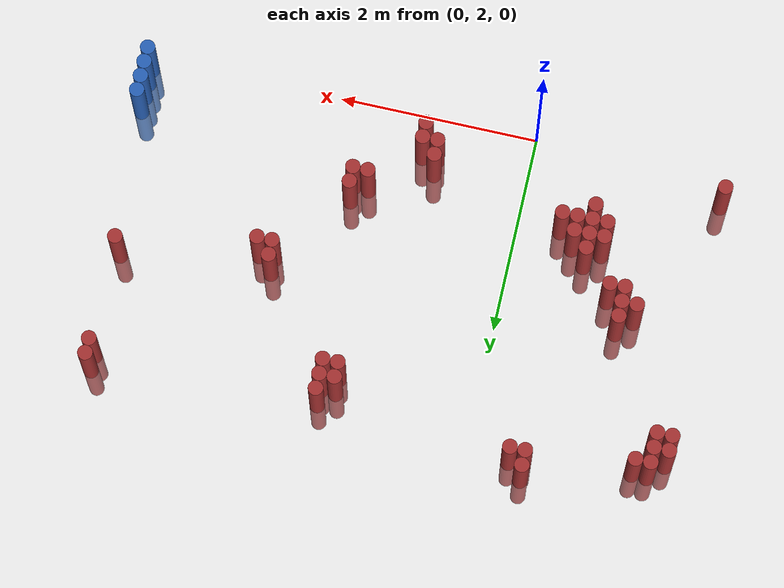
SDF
<sdf version="1.6">
 <world name="default">
  <model name="ground_plane">
   <static>1</static>
   <link name="link">
    <collision name="collision">
     <geometry><plane><normal>0 0 1</normal><size>100 100</size></plane></geometry>
     <surface><friction><ode><mu>100</mu><mu2>50</mu2></ode></friction></surface>
    </collision>
    <visual name="visual">
     <cast_shadows>0</cast_shadows>
     <geometry><plane><normal>0 0 1</normal><size>100 100</size></plane></geometry>
     <material>
      <script><uri>file://media/materials/scripts/gazebo.material</uri><name>Gazebo/Grey</name></script>
     </material>
    </visual>
   </link>
  </model>
  <model name="unit_cylinder_144">
   <static>1</static>
   <pose>3.925000 2.275000 0.000000 0.000000 0.000000 0.000000</pose>
   <link name="link">
    <inertial>
     <mass>1</mass>
     <inertia><ixx>0.145833</ixx><ixy>0</ixy><ixz>0</ixz><iyy>0.145833</iyy><iyz>0</iyz><izz>0.125</izz></inertia>
    </inertial>
    <collision name="collision">
     <geometry><cylinder><radius>0.075000</radius><length>1.5</length></cylinder></geometry>
    </collision>
    <visual name="visual">
     <geometry><cylinder><radius>0.075000</radius><length>1.5</length></cylinder></geometry>
     <material>
      <ambient>0.152000 0.379000 0.720000 1</ambient>
      <diffuse>0.152000 0.379000 0.720000 1</diffuse>
     </material>
     <material>
      <script><name>Gazebo/Grey</name><uri>file://media/materials/scripts/gazebo.material</uri></script>
     </material>
    </visual>
   </link>
  </model>
  <model name="unit_cylinder_146">
   <static>1</static>
   <pose>3.925000 2.425000 0.000000 0.000000 0.000000 0.000000</pose>
   <link name="link">
    <inertial>
     <mass>1</mass>
     <inertia><ixx>0.145833</ixx><ixy>0</ixy><ixz>0</ixz><iyy>0.145833</iyy><iyz>0</iyz><izz>0.125</izz></inertia>
    </inertial>
    <collision name="collision">
     <geometry><cylinder><radius>0.075000</radius><length>1.5</length></cylinder></geometry>
    </collision>
    <visual name="visual">
     <geometry><cylinder><radius>0.075000</radius><length>1.5</length></cylinder></geometry>
     <material>
      <ambient>0.152000 0.379000 0.720000 1</ambient>
      <diffuse>0.152000 0.379000 0.720000 1</diffuse>
     </material>
     <material>
      <script><name>Gazebo/Grey</name><uri>file://media/materials/scripts/gazebo.material</uri></script>
     </material>
    </visual>
   </link>
  </model>
  <model name="unit_cylinder_148">
   <static>1</static>
   <pose>3.925000 2.575000 0.000000 0.000000 0.000000 0.000000</pose>
   <link name="link">
    <inertial>
     <mass>1</mass>
     <inertia><ixx>0.145833</ixx><ixy>0</ixy><ixz>0</ixz><iyy>0.145833</iyy><iyz>0</iyz><izz>0.125</izz></inertia>
    </inertial>
    <collision name="collision">
     <geometry><cylinder><radius>0.075000</radius><length>1.5</length></cylinder></geometry>
    </collision>
    <visual name="visual">
     <geometry><cylinder><radius>0.075000</radius><length>1.5</length></cylinder></geometry>
     <material>
      <ambient>0.152000 0.379000 0.720000 1</ambient>
      <diffuse>0.152000 0.379000 0.720000 1</diffuse>
     </material>
     <material>
      <script><name>Gazebo/Grey</name><uri>file://media/materials/scripts/gazebo.material</uri></script>
     </material>
    </visual>
   </link>
  </model>
  <model name="unit_cylinder_298">
   <static>1</static>
   <pose>-1.925000 2.275000 0.000000 0.000000 0.000000 0.000000</pose>
   <link name="link">
    <inertial>
     <mass>1</mass>
     <inertia><ixx>0.145833</ixx><ixy>0</ixy><ixz>0</ixz><iyy>0.145833</iyy><iyz>0</iyz><izz>0.125</izz></inertia>
    </inertial>
    <collision name="collision">
     <geometry><cylinder><radius>0.075000</radius><length>1.5</length></cylinder></geometry>
    </collision>
    <visual name="visual">
     <geometry><cylinder><radius>0.075000</radius><length>1.5</length></cylinder></geometry>
     <material>
      <ambient>0.648000 0.192000 0.192000 1</ambient>
      <diffuse>0.648000 0.192000 0.192000 1</diffuse>
     </material>
     <material>
      <script><name>Gazebo/Grey</name><uri>file://media/materials/scripts/gazebo.material</uri></script>
     </material>
    </visual>
   </link>
  </model>
  <model name="unit_cylinder_299">
   <static>1</static>
   <pose>-1.925000 4.825000 0.000000 0.000000 0.000000 0.000000</pose>
   <link name="link">
    <inertial>
     <mass>1</mass>
     <inertia><ixx>0.145833</ixx><ixy>0</ixy><ixz>0</ixz><iyy>0.145833</iyy><iyz>0</iyz><izz>0.125</izz></inertia>
    </inertial>
    <collision name="collision">
     <geometry><cylinder><radius>0.075000</radius><length>1.5</length></cylinder></geometry>
    </collision>
    <visual name="visual">
     <geometry><cylinder><radius>0.075000</radius><length>1.5</length></cylinder></geometry>
     <material>
      <ambient>0.648000 0.192000 0.192000 1</ambient>
      <diffuse>0.648000 0.192000 0.192000 1</diffuse>
     </material>
     <material>
      <script><name>Gazebo/Grey</name><uri>file://media/materials/scripts/gazebo.material</uri></script>
     </material>
    </visual>
   </link>
  </model>
  <model name="unit_cylinder_300">
   <static>1</static>
   <pose>-1.925000 4.975000 0.000000 0.000000 0.000000 0.000000</pose>
   <link name="link">
    <inertial>
     <mass>1</mass>
     <inertia><ixx>0.145833</ixx><ixy>0</ixy><ixz>0</ixz><iyy>0.145833</iyy><iyz>0</iyz><izz>0.125</izz></inertia>
    </inertial>
    <collision name="collision">
     <geometry><cylinder><radius>0.075000</radius><length>1.5</length></cylinder></geometry>
    </collision>
    <visual name="visual">
     <geometry><cylinder><radius>0.075000</radius><length>1.5</length></cylinder></geometry>
     <material>
      <ambient>0.648000 0.192000 0.192000 1</ambient>
      <diffuse>0.648000 0.192000 0.192000 1</diffuse>
     </material>
     <material>
      <script><name>Gazebo/Grey</name><uri>file://media/materials/scripts/gazebo.material</uri></script>
     </material>
    </visual>
   </link>
  </model>
  <model name="unit_cylinder_303">
   <static>1</static>
   <pose>-1.775000 4.825000 0.000000 0.000000 0.000000 0.000000</pose>
   <link name="link">
    <inertial>
     <mass>1</mass>
     <inertia><ixx>0.145833</ixx><ixy>0</ixy><ixz>0</ixz><iyy>0.145833</iyy><iyz>0</iyz><izz>0.125</izz></inertia>
    </inertial>
    <collision name="collision">
     <geometry><cylinder><radius>0.075000</radius><length>1.5</length></cylinder></geometry>
    </collision>
    <visual name="visual">
     <geometry><cylinder><radius>0.075000</radius><length>1.5</length></cylinder></geometry>
     <material>
      <ambient>0.648000 0.192000 0.192000 1</ambient>
      <diffuse>0.648000 0.192000 0.192000 1</diffuse>
     </material>
     <material>
      <script><name>Gazebo/Grey</name><uri>file://media/materials/scripts/gazebo.material</uri></script>
     </material>
    </visual>
   </link>
  </model>
  <model name="unit_cylinder_304">
   <static>1</static>
   <pose>-1.775000 4.975000 0.000000 0.000000 0.000000 0.000000</pose>
   <link name="link">
    <inertial>
     <mass>1</mass>
     <inertia><ixx>0.145833</ixx><ixy>0</ixy><ixz>0</ixz><iyy>0.145833</iyy><iyz>0</iyz><izz>0.125</izz></inertia>
    </inertial>
    <collision name="collision">
     <geometry><cylinder><radius>0.075000</radius><length>1.5</length></cylinder></geometry>
    </collision>
    <visual name="visual">
     <geometry><cylinder><radius>0.075000</radius><length>1.5</length></cylinder></geometry>
     <material>
      <ambient>0.648000 0.192000 0.192000 1</ambient>
      <diffuse>0.648000 0.192000 0.192000 1</diffuse>
     </material>
     <material>
      <script><name>Gazebo/Grey</name><uri>file://media/materials/scripts/gazebo.material</uri></script>
     </material>
    </visual>
   </link>
  </model>
  <model name="unit_cylinder_305">
   <static>1</static>
   <pose>-1.775000 5.125000 0.000000 0.000000 0.000000 0.000000</pose>
   <link name="link">
    <inertial>
     <mass>1</mass>
     <inertia><ixx>0.145833</ixx><ixy>0</ixy><ixz>0</ixz><iyy>0.145833</iyy><iyz>0</iyz><izz>0.125</izz></inertia>
    </inertial>
    <collision name="collision">
     <geometry><cylinder><radius>0.075000</radius><length>1.5</length></cylinder></geometry>
    </collision>
    <visual name="visual">
     <geometry><cylinder><radius>0.075000</radius><length>1.5</length></cylinder></geometry>
     <material>
      <ambient>0.648000 0.192000 0.192000 1</ambient>
      <diffuse>0.648000 0.192000 0.192000 1</diffuse>
     </material>
     <material>
      <script><name>Gazebo/Grey</name><uri>file://media/materials/scripts/gazebo.material</uri></script>
     </material>
    </visual>
   </link>
  </model>
  <model name="unit_cylinder_307">
   <static>1</static>
   <pose>-1.625000 5.125000 0.000000 0.000000 0.000000 0.000000</pose>
   <link name="link">
    <inertial>
     <mass>1</mass>
     <inertia><ixx>0.145833</ixx><ixy>0</ixy><ixz>0</ixz><iyy>0.145833</iyy><iyz>0</iyz><izz>0.125</izz></inertia>
    </inertial>
    <collision name="collision">
     <geometry><cylinder><radius>0.075000</radius><length>1.5</length></cylinder></geometry>
    </collision>
    <visual name="visual">
     <geometry><cylinder><radius>0.075000</radius><length>1.5</length></cylinder></geometry>
     <material>
      <ambient>0.648000 0.192000 0.192000 1</ambient>
      <diffuse>0.648000 0.192000 0.192000 1</diffuse>
     </material>
     <material>
      <script><name>Gazebo/Grey</name><uri>file://media/materials/scripts/gazebo.material</uri></script>
     </material>
    </visual>
   </link>
  </model>
  <model name="unit_cylinder_310">
   <static>1</static>
   <pose>-1.325000 3.625000 0.000000 0.000000 0.000000 0.000000</pose>
   <link name="link">
    <inertial>
     <mass>1</mass>
     <inertia><ixx>0.145833</ixx><ixy>0</ixy><ixz>0</ixz><iyy>0.145833</iyy><iyz>0</iyz><izz>0.125</izz></inertia>
    </inertial>
    <collision name="collision">
     <geometry><cylinder><radius>0.075000</radius><length>1.5</length></cylinder></geometry>
    </collision>
    <visual name="visual">
     <geometry><cylinder><radius>0.075000</radius><length>1.5</length></cylinder></geometry>
     <material>
      <ambient>0.648000 0.192000 0.192000 1</ambient>
      <diffuse>0.648000 0.192000 0.192000 1</diffuse>
     </material>
     <material>
      <script><name>Gazebo/Grey</name><uri>file://media/materials/scripts/gazebo.material</uri></script>
     </material>
    </visual>
   </link>
  </model>
  <model name="unit_cylinder_313">
   <static>1</static>
   <pose>-1.175000 3.475000 0.000000 0.000000 0.000000 0.000000</pose>
   <link name="link">
    <inertial>
     <mass>1</mass>
     <inertia><ixx>0.145833</ixx><ixy>0</ixy><ixz>0</ixz><iyy>0.145833</iyy><iyz>0</iyz><izz>0.125</izz></inertia>
    </inertial>
    <collision name="collision">
     <geometry><cylinder><radius>0.075000</radius><length>1.5</length></cylinder></geometry>
    </collision>
    <visual name="visual">
     <geometry><cylinder><radius>0.075000</radius><length>1.5</length></cylinder></geometry>
     <material>
      <ambient>0.648000 0.192000 0.192000 1</ambient>
      <diffuse>0.648000 0.192000 0.192000 1</diffuse>
     </material>
     <material>
      <script><name>Gazebo/Grey</name><uri>file://media/materials/scripts/gazebo.material</uri></script>
     </material>
    </visual>
   </link>
  </model>
  <model name="unit_cylinder_314">
   <static>1</static>
   <pose>-1.175000 3.625000 0.000000 0.000000 0.000000 0.000000</pose>
   <link name="link">
    <inertial>
     <mass>1</mass>
     <inertia><ixx>0.145833</ixx><ixy>0</ixy><ixz>0</ixz><iyy>0.145833</iyy><iyz>0</iyz><izz>0.125</izz></inertia>
    </inertial>
    <collision name="collision">
     <geometry><cylinder><radius>0.075000</radius><length>1.5</length></cylinder></geometry>
    </collision>
    <visual name="visual">
     <geometry><cylinder><radius>0.075000</radius><length>1.5</length></cylinder></geometry>
     <material>
      <ambient>0.648000 0.192000 0.192000 1</ambient>
      <diffuse>0.648000 0.192000 0.192000 1</diffuse>
     </material>
     <material>
      <script><name>Gazebo/Grey</name><uri>file://media/materials/scripts/gazebo.material</uri></script>
     </material>
    </visual>
   </link>
  </model>
  <model name="unit_cylinder_315">
   <static>1</static>
   <pose>-1.175000 3.775000 0.000000 0.000000 0.000000 0.000000</pose>
   <link name="link">
    <inertial>
     <mass>1</mass>
     <inertia><ixx>0.145833</ixx><ixy>0</ixy><ixz>0</ixz><iyy>0.145833</iyy><iyz>0</iyz><izz>0.125</izz></inertia>
    </inertial>
    <collision name="collision">
     <geometry><cylinder><radius>0.075000</radius><length>1.5</length></cylinder></geometry>
    </collision>
    <visual name="visual">
     <geometry><cylinder><radius>0.075000</radius><length>1.5</length></cylinder></geometry>
     <material>
      <ambient>0.648000 0.192000 0.192000 1</ambient>
      <diffuse>0.648000 0.192000 0.192000 1</diffuse>
     </material>
     <material>
      <script><name>Gazebo/Grey</name><uri>file://media/materials/scripts/gazebo.material</uri></script>
     </material>
    </visual>
   </link>
  </model>
  <model name="unit_cylinder_318">
   <static>1</static>
   <pose>-1.025000 3.475000 0.000000 0.000000 0.000000 0.000000</pose>
   <link name="link">
    <inertial>
     <mass>1</mass>
     <inertia><ixx>0.145833</ixx><ixy>0</ixy><ixz>0</ixz><iyy>0.145833</iyy><iyz>0</iyz><izz>0.125</izz></inertia>
    </inertial>
    <collision name="collision">
     <geometry><cylinder><radius>0.075000</radius><length>1.5</length></cylinder></geometry>
    </collision>
    <visual name="visual">
     <geometry><cylinder><radius>0.075000</radius><length>1.5</length></cylinder></geometry>
     <material>
      <ambient>0.648000 0.192000 0.192000 1</ambient>
      <diffuse>0.648000 0.192000 0.192000 1</diffuse>
     </material>
     <material>
      <script><name>Gazebo/Grey</name><uri>file://media/materials/scripts/gazebo.material</uri></script>
     </material>
    </visual>
   </link>
  </model>
  <model name="unit_cylinder_322">
   <static>1</static>
   <pose>-0.875000 2.875000 0.000000 0.000000 0.000000 0.000000</pose>
   <link name="link">
    <inertial>
     <mass>1</mass>
     <inertia><ixx>0.145833</ixx><ixy>0</ixy><ixz>0</ixz><iyy>0.145833</iyy><iyz>0</iyz><izz>0.125</izz></inertia>
    </inertial>
    <collision name="collision">
     <geometry><cylinder><radius>0.075000</radius><length>1.5</length></cylinder></geometry>
    </collision>
    <visual name="visual">
     <geometry><cylinder><radius>0.075000</radius><length>1.5</length></cylinder></geometry>
     <material>
      <ambient>0.648000 0.192000 0.192000 1</ambient>
      <diffuse>0.648000 0.192000 0.192000 1</diffuse>
     </material>
     <material>
      <script><name>Gazebo/Grey</name><uri>file://media/materials/scripts/gazebo.material</uri></script>
     </material>
    </visual>
   </link>
  </model>
  <model name="unit_cylinder_323">
   <static>1</static>
   <pose>-0.875000 3.025000 0.000000 0.000000 0.000000 0.000000</pose>
   <link name="link">
    <inertial>
     <mass>1</mass>
     <inertia><ixx>0.145833</ixx><ixy>0</ixy><ixz>0</ixz><iyy>0.145833</iyy><iyz>0</iyz><izz>0.125</izz></inertia>
    </inertial>
    <collision name="collision">
     <geometry><cylinder><radius>0.075000</radius><length>1.5</length></cylinder></geometry>
    </collision>
    <visual name="visual">
     <geometry><cylinder><radius>0.075000</radius><length>1.5</length></cylinder></geometry>
     <material>
      <ambient>0.648000 0.192000 0.192000 1</ambient>
      <diffuse>0.648000 0.192000 0.192000 1</diffuse>
     </material>
     <material>
      <script><name>Gazebo/Grey</name><uri>file://media/materials/scripts/gazebo.material</uri></script>
     </material>
    </visual>
   </link>
  </model>
  <model name="unit_cylinder_327">
   <static>1</static>
   <pose>-0.725000 2.725000 0.000000 0.000000 0.000000 0.000000</pose>
   <link name="link">
    <inertial>
     <mass>1</mass>
     <inertia><ixx>0.145833</ixx><ixy>0</ixy><ixz>0</ixz><iyy>0.145833</iyy><iyz>0</iyz><izz>0.125</izz></inertia>
    </inertial>
    <collision name="collision">
     <geometry><cylinder><radius>0.075000</radius><length>1.5</length></cylinder></geometry>
    </collision>
    <visual name="visual">
     <geometry><cylinder><radius>0.075000</radius><length>1.5</length></cylinder></geometry>
     <material>
      <ambient>0.648000 0.192000 0.192000 1</ambient>
      <diffuse>0.648000 0.192000 0.192000 1</diffuse>
     </material>
     <material>
      <script><name>Gazebo/Grey</name><uri>file://media/materials/scripts/gazebo.material</uri></script>
     </material>
    </visual>
   </link>
  </model>
  <model name="unit_cylinder_328">
   <static>1</static>
   <pose>-0.725000 2.875000 0.000000 0.000000 0.000000 0.000000</pose>
   <link name="link">
    <inertial>
     <mass>1</mass>
     <inertia><ixx>0.145833</ixx><ixy>0</ixy><ixz>0</ixz><iyy>0.145833</iyy><iyz>0</iyz><izz>0.125</izz></inertia>
    </inertial>
    <collision name="collision">
     <geometry><cylinder><radius>0.075000</radius><length>1.5</length></cylinder></geometry>
    </collision>
    <visual name="visual">
     <geometry><cylinder><radius>0.075000</radius><length>1.5</length></cylinder></geometry>
     <material>
      <ambient>0.648000 0.192000 0.192000 1</ambient>
      <diffuse>0.648000 0.192000 0.192000 1</diffuse>
     </material>
     <material>
      <script><name>Gazebo/Grey</name><uri>file://media/materials/scripts/gazebo.material</uri></script>
     </material>
    </visual>
   </link>
  </model>
  <model name="unit_cylinder_329">
   <static>1</static>
   <pose>-0.725000 3.025000 0.000000 0.000000 0.000000 0.000000</pose>
   <link name="link">
    <inertial>
     <mass>1</mass>
     <inertia><ixx>0.145833</ixx><ixy>0</ixy><ixz>0</ixz><iyy>0.145833</iyy><iyz>0</iyz><izz>0.125</izz></inertia>
    </inertial>
    <collision name="collision">
     <geometry><cylinder><radius>0.075000</radius><length>1.5</length></cylinder></geometry>
    </collision>
    <visual name="visual">
     <geometry><cylinder><radius>0.075000</radius><length>1.5</length></cylinder></geometry>
     <material>
      <ambient>0.648000 0.192000 0.192000 1</ambient>
      <diffuse>0.648000 0.192000 0.192000 1</diffuse>
     </material>
     <material>
      <script><name>Gazebo/Grey</name><uri>file://media/materials/scripts/gazebo.material</uri></script>
     </material>
    </visual>
   </link>
  </model>
  <model name="unit_cylinder_330">
   <static>1</static>
   <pose>-0.725000 3.175000 0.000000 0.000000 0.000000 0.000000</pose>
   <link name="link">
    <inertial>
     <mass>1</mass>
     <inertia><ixx>0.145833</ixx><ixy>0</ixy><ixz>0</ixz><iyy>0.145833</iyy><iyz>0</iyz><izz>0.125</izz></inertia>
    </inertial>
    <collision name="collision">
     <geometry><cylinder><radius>0.075000</radius><length>1.5</length></cylinder></geometry>
    </collision>
    <visual name="visual">
     <geometry><cylinder><radius>0.075000</radius><length>1.5</length></cylinder></geometry>
     <material>
      <ambient>0.648000 0.192000 0.192000 1</ambient>
      <diffuse>0.648000 0.192000 0.192000 1</diffuse>
     </material>
     <material>
      <script><name>Gazebo/Grey</name><uri>file://media/materials/scripts/gazebo.material</uri></script>
     </material>
    </visual>
   </link>
  </model>
  <model name="unit_cylinder_332">
   <static>1</static>
   <pose>-0.575000 2.875000 0.000000 0.000000 0.000000 0.000000</pose>
   <link name="link">
    <inertial>
     <mass>1</mass>
     <inertia><ixx>0.145833</ixx><ixy>0</ixy><ixz>0</ixz><iyy>0.145833</iyy><iyz>0</iyz><izz>0.125</izz></inertia>
    </inertial>
    <collision name="collision">
     <geometry><cylinder><radius>0.075000</radius><length>1.5</length></cylinder></geometry>
    </collision>
    <visual name="visual">
     <geometry><cylinder><radius>0.075000</radius><length>1.5</length></cylinder></geometry>
     <material>
      <ambient>0.648000 0.192000 0.192000 1</ambient>
      <diffuse>0.648000 0.192000 0.192000 1</diffuse>
     </material>
     <material>
      <script><name>Gazebo/Grey</name><uri>file://media/materials/scripts/gazebo.material</uri></script>
     </material>
    </visual>
   </link>
  </model>
  <model name="unit_cylinder_333">
   <static>1</static>
   <pose>-0.575000 3.025000 0.000000 0.000000 0.000000 0.000000</pose>
   <link name="link">
    <inertial>
     <mass>1</mass>
     <inertia><ixx>0.145833</ixx><ixy>0</ixy><ixz>0</ixz><iyy>0.145833</iyy><iyz>0</iyz><izz>0.125</izz></inertia>
    </inertial>
    <collision name="collision">
     <geometry><cylinder><radius>0.075000</radius><length>1.5</length></cylinder></geometry>
    </collision>
    <visual name="visual">
     <geometry><cylinder><radius>0.075000</radius><length>1.5</length></cylinder></geometry>
     <material>
      <ambient>0.648000 0.192000 0.192000 1</ambient>
      <diffuse>0.648000 0.192000 0.192000 1</diffuse>
     </material>
     <material>
      <script><name>Gazebo/Grey</name><uri>file://media/materials/scripts/gazebo.material</uri></script>
     </material>
    </visual>
   </link>
  </model>
  <model name="unit_cylinder_334">
   <static>1</static>
   <pose>-0.575000 5.275000 0.000000 0.000000 0.000000 0.000000</pose>
   <link name="link">
    <inertial>
     <mass>1</mass>
     <inertia><ixx>0.145833</ixx><ixy>0</ixy><ixz>0</ixz><iyy>0.145833</iyy><iyz>0</iyz><izz>0.125</izz></inertia>
    </inertial>
    <collision name="collision">
     <geometry><cylinder><radius>0.075000</radius><length>1.5</length></cylinder></geometry>
    </collision>
    <visual name="visual">
     <geometry><cylinder><radius>0.075000</radius><length>1.5</length></cylinder></geometry>
     <material>
      <ambient>0.648000 0.192000 0.192000 1</ambient>
      <diffuse>0.648000 0.192000 0.192000 1</diffuse>
     </material>
     <material>
      <script><name>Gazebo/Grey</name><uri>file://media/materials/scripts/gazebo.material</uri></script>
     </material>
    </visual>
   </link>
  </model>
  <model name="unit_cylinder_335">
   <static>1</static>
   <pose>-0.575000 5.425000 0.000000 0.000000 0.000000 0.000000</pose>
   <link name="link">
    <inertial>
     <mass>1</mass>
     <inertia><ixx>0.145833</ixx><ixy>0</ixy><ixz>0</ixz><iyy>0.145833</iyy><iyz>0</iyz><izz>0.125</izz></inertia>
    </inertial>
    <collision name="collision">
     <geometry><cylinder><radius>0.075000</radius><length>1.5</length></cylinder></geometry>
    </collision>
    <visual name="visual">
     <geometry><cylinder><radius>0.075000</radius><length>1.5</length></cylinder></geometry>
     <material>
      <ambient>0.648000 0.192000 0.192000 1</ambient>
      <diffuse>0.648000 0.192000 0.192000 1</diffuse>
     </material>
     <material>
      <script><name>Gazebo/Grey</name><uri>file://media/materials/scripts/gazebo.material</uri></script>
     </material>
    </visual>
   </link>
  </model>
  <model name="unit_cylinder_336">
   <static>1</static>
   <pose>-0.425000 2.875000 0.000000 0.000000 0.000000 0.000000</pose>
   <link name="link">
    <inertial>
     <mass>1</mass>
     <inertia><ixx>0.145833</ixx><ixy>0</ixy><ixz>0</ixz><iyy>0.145833</iyy><iyz>0</iyz><izz>0.125</izz></inertia>
    </inertial>
    <collision name="collision">
     <geometry><cylinder><radius>0.075000</radius><length>1.5</length></cylinder></geometry>
    </collision>
    <visual name="visual">
     <geometry><cylinder><radius>0.075000</radius><length>1.5</length></cylinder></geometry>
     <material>
      <ambient>0.648000 0.192000 0.192000 1</ambient>
      <diffuse>0.648000 0.192000 0.192000 1</diffuse>
     </material>
     <material>
      <script><name>Gazebo/Grey</name><uri>file://media/materials/scripts/gazebo.material</uri></script>
     </material>
    </visual>
   </link>
  </model>
  <model name="unit_cylinder_337">
   <static>1</static>
   <pose>-0.425000 5.275000 0.000000 0.000000 0.000000 0.000000</pose>
   <link name="link">
    <inertial>
     <mass>1</mass>
     <inertia><ixx>0.145833</ixx><ixy>0</ixy><ixz>0</ixz><iyy>0.145833</iyy><iyz>0</iyz><izz>0.125</izz></inertia>
    </inertial>
    <collision name="collision">
     <geometry><cylinder><radius>0.075000</radius><length>1.5</length></cylinder></geometry>
    </collision>
    <visual name="visual">
     <geometry><cylinder><radius>0.075000</radius><length>1.5</length></cylinder></geometry>
     <material>
      <ambient>0.648000 0.192000 0.192000 1</ambient>
      <diffuse>0.648000 0.192000 0.192000 1</diffuse>
     </material>
     <material>
      <script><name>Gazebo/Grey</name><uri>file://media/materials/scripts/gazebo.material</uri></script>
     </material>
    </visual>
   </link>
  </model>
  <model name="unit_cylinder_338">
   <static>1</static>
   <pose>0.925000 2.425000 0.000000 0.000000 0.000000 0.000000</pose>
   <link name="link">
    <inertial>
     <mass>1</mass>
     <inertia><ixx>0.145833</ixx><ixy>0</ixy><ixz>0</ixz><iyy>0.145833</iyy><iyz>0</iyz><izz>0.125</izz></inertia>
    </inertial>
    <collision name="collision">
     <geometry><cylinder><radius>0.075000</radius><length>1.5</length></cylinder></geometry>
    </collision>
    <visual name="visual">
     <geometry><cylinder><radius>0.075000</radius><length>1.5</length></cylinder></geometry>
     <material>
      <ambient>0.648000 0.192000 0.192000 1</ambient>
      <diffuse>0.648000 0.192000 0.192000 1</diffuse>
     </material>
     <material>
      <script><name>Gazebo/Grey</name><uri>file://media/materials/scripts/gazebo.material</uri></script>
     </material>
    </visual>
   </link>
  </model>
  <model name="unit_cylinder_339">
   <static>1</static>
   <pose>0.925000 2.575000 0.000000 0.000000 0.000000 0.000000</pose>
   <link name="link">
    <inertial>
     <mass>1</mass>
     <inertia><ixx>0.145833</ixx><ixy>0</ixy><ixz>0</ixz><iyy>0.145833</iyy><iyz>0</iyz><izz>0.125</izz></inertia>
    </inertial>
    <collision name="collision">
     <geometry><cylinder><radius>0.075000</radius><length>1.5</length></cylinder></geometry>
    </collision>
    <visual name="visual">
     <geometry><cylinder><radius>0.075000</radius><length>1.5</length></cylinder></geometry>
     <material>
      <ambient>0.648000 0.192000 0.192000 1</ambient>
      <diffuse>0.648000 0.192000 0.192000 1</diffuse>
     </material>
     <material>
      <script><name>Gazebo/Grey</name><uri>file://media/materials/scripts/gazebo.material</uri></script>
     </material>
    </visual>
   </link>
  </model>
  <model name="unit_cylinder_342">
   <static>1</static>
   <pose>1.075000 2.275000 0.000000 0.000000 0.000000 0.000000</pose>
   <link name="link">
    <inertial>
     <mass>1</mass>
     <inertia><ixx>0.145833</ixx><ixy>0</ixy><ixz>0</ixz><iyy>0.145833</iyy><iyz>0</iyz><izz>0.125</izz></inertia>
    </inertial>
    <collision name="collision">
     <geometry><cylinder><radius>0.075000</radius><length>1.5</length></cylinder></geometry>
    </collision>
    <visual name="visual">
     <geometry><cylinder><radius>0.075000</radius><length>1.5</length></cylinder></geometry>
     <material>
      <ambient>0.648000 0.192000 0.192000 1</ambient>
      <diffuse>0.648000 0.192000 0.192000 1</diffuse>
     </material>
     <material>
      <script><name>Gazebo/Grey</name><uri>file://media/materials/scripts/gazebo.material</uri></script>
     </material>
    </visual>
   </link>
  </model>
  <model name="unit_cylinder_343">
   <static>1</static>
   <pose>1.075000 2.425000 0.000000 0.000000 0.000000 0.000000</pose>
   <link name="link">
    <inertial>
     <mass>1</mass>
     <inertia><ixx>0.145833</ixx><ixy>0</ixy><ixz>0</ixz><iyy>0.145833</iyy><iyz>0</iyz><izz>0.125</izz></inertia>
    </inertial>
    <collision name="collision">
     <geometry><cylinder><radius>0.075000</radius><length>1.5</length></cylinder></geometry>
    </collision>
    <visual name="visual">
     <geometry><cylinder><radius>0.075000</radius><length>1.5</length></cylinder></geometry>
     <material>
      <ambient>0.648000 0.192000 0.192000 1</ambient>
      <diffuse>0.648000 0.192000 0.192000 1</diffuse>
     </material>
     <material>
      <script><name>Gazebo/Grey</name><uri>file://media/materials/scripts/gazebo.material</uri></script>
     </material>
    </visual>
   </link>
  </model>
  <model name="unit_cylinder_346">
   <static>1</static>
   <pose>1.375000 4.825000 0.000000 0.000000 0.000000 0.000000</pose>
   <link name="link">
    <inertial>
     <mass>1</mass>
     <inertia><ixx>0.145833</ixx><ixy>0</ixy><ixz>0</ixz><iyy>0.145833</iyy><iyz>0</iyz><izz>0.125</izz></inertia>
    </inertial>
    <collision name="collision">
     <geometry><cylinder><radius>0.075000</radius><length>1.5</length></cylinder></geometry>
    </collision>
    <visual name="visual">
     <geometry><cylinder><radius>0.075000</radius><length>1.5</length></cylinder></geometry>
     <material>
      <ambient>0.648000 0.192000 0.192000 1</ambient>
      <diffuse>0.648000 0.192000 0.192000 1</diffuse>
     </material>
     <material>
      <script><name>Gazebo/Grey</name><uri>file://media/materials/scripts/gazebo.material</uri></script>
     </material>
    </visual>
   </link>
  </model>
  <model name="unit_cylinder_347">
   <static>1</static>
   <pose>1.375000 4.975000 0.000000 0.000000 0.000000 0.000000</pose>
   <link name="link">
    <inertial>
     <mass>1</mass>
     <inertia><ixx>0.145833</ixx><ixy>0</ixy><ixz>0</ixz><iyy>0.145833</iyy><iyz>0</iyz><izz>0.125</izz></inertia>
    </inertial>
    <collision name="collision">
     <geometry><cylinder><radius>0.075000</radius><length>1.5</length></cylinder></geometry>
    </collision>
    <visual name="visual">
     <geometry><cylinder><radius>0.075000</radius><length>1.5</length></cylinder></geometry>
     <material>
      <ambient>0.648000 0.192000 0.192000 1</ambient>
      <diffuse>0.648000 0.192000 0.192000 1</diffuse>
     </material>
     <material>
      <script><name>Gazebo/Grey</name><uri>file://media/materials/scripts/gazebo.material</uri></script>
     </material>
    </visual>
   </link>
  </model>
  <model name="unit_cylinder_350">
   <static>1</static>
   <pose>1.525000 2.875000 0.000000 0.000000 0.000000 0.000000</pose>
   <link name="link">
    <inertial>
     <mass>1</mass>
     <inertia><ixx>0.145833</ixx><ixy>0</ixy><ixz>0</ixz><iyy>0.145833</iyy><iyz>0</iyz><izz>0.125</izz></inertia>
    </inertial>
    <collision name="collision">
     <geometry><cylinder><radius>0.075000</radius><length>1.5</length></cylinder></geometry>
    </collision>
    <visual name="visual">
     <geometry><cylinder><radius>0.075000</radius><length>1.5</length></cylinder></geometry>
     <material>
      <ambient>0.648000 0.192000 0.192000 1</ambient>
      <diffuse>0.648000 0.192000 0.192000 1</diffuse>
     </material>
     <material>
      <script><name>Gazebo/Grey</name><uri>file://media/materials/scripts/gazebo.material</uri></script>
     </material>
    </visual>
   </link>
  </model>
  <model name="unit_cylinder_351">
   <static>1</static>
   <pose>1.525000 4.825000 0.000000 0.000000 0.000000 0.000000</pose>
   <link name="link">
    <inertial>
     <mass>1</mass>
     <inertia><ixx>0.145833</ixx><ixy>0</ixy><ixz>0</ixz><iyy>0.145833</iyy><iyz>0</iyz><izz>0.125</izz></inertia>
    </inertial>
    <collision name="collision">
     <geometry><cylinder><radius>0.075000</radius><length>1.5</length></cylinder></geometry>
    </collision>
    <visual name="visual">
     <geometry><cylinder><radius>0.075000</radius><length>1.5</length></cylinder></geometry>
     <material>
      <ambient>0.648000 0.192000 0.192000 1</ambient>
      <diffuse>0.648000 0.192000 0.192000 1</diffuse>
     </material>
     <material>
      <script><name>Gazebo/Grey</name><uri>file://media/materials/scripts/gazebo.material</uri></script>
     </material>
    </visual>
   </link>
  </model>
  <model name="unit_cylinder_352">
   <static>1</static>
   <pose>1.525000 4.975000 0.000000 0.000000 0.000000 0.000000</pose>
   <link name="link">
    <inertial>
     <mass>1</mass>
     <inertia><ixx>0.145833</ixx><ixy>0</ixy><ixz>0</ixz><iyy>0.145833</iyy><iyz>0</iyz><izz>0.125</izz></inertia>
    </inertial>
    <collision name="collision">
     <geometry><cylinder><radius>0.075000</radius><length>1.5</length></cylinder></geometry>
    </collision>
    <visual name="visual">
     <geometry><cylinder><radius>0.075000</radius><length>1.5</length></cylinder></geometry>
     <material>
      <ambient>0.648000 0.192000 0.192000 1</ambient>
      <diffuse>0.648000 0.192000 0.192000 1</diffuse>
     </material>
     <material>
      <script><name>Gazebo/Grey</name><uri>file://media/materials/scripts/gazebo.material</uri></script>
     </material>
    </visual>
   </link>
  </model>
  <model name="unit_cylinder_353">
   <static>1</static>
   <pose>1.525000 5.125000 0.000000 0.000000 0.000000 0.000000</pose>
   <link name="link">
    <inertial>
     <mass>1</mass>
     <inertia><ixx>0.145833</ixx><ixy>0</ixy><ixz>0</ixz><iyy>0.145833</iyy><iyz>0</iyz><izz>0.125</izz></inertia>
    </inertial>
    <collision name="collision">
     <geometry><cylinder><radius>0.075000</radius><length>1.5</length></cylinder></geometry>
    </collision>
    <visual name="visual">
     <geometry><cylinder><radius>0.075000</radius><length>1.5</length></cylinder></geometry>
     <material>
      <ambient>0.648000 0.192000 0.192000 1</ambient>
      <diffuse>0.648000 0.192000 0.192000 1</diffuse>
     </material>
     <material>
      <script><name>Gazebo/Grey</name><uri>file://media/materials/scripts/gazebo.material</uri></script>
     </material>
    </visual>
   </link>
  </model>
  <model name="unit_cylinder_354">
   <static>1</static>
   <pose>1.675000 2.875000 0.000000 0.000000 0.000000 0.000000</pose>
   <link name="link">
    <inertial>
     <mass>1</mass>
     <inertia><ixx>0.145833</ixx><ixy>0</ixy><ixz>0</ixz><iyy>0.145833</iyy><iyz>0</iyz><izz>0.125</izz></inertia>
    </inertial>
    <collision name="collision">
     <geometry><cylinder><radius>0.075000</radius><length>1.5</length></cylinder></geometry>
    </collision>
    <visual name="visual">
     <geometry><cylinder><radius>0.075000</radius><length>1.5</length></cylinder></geometry>
     <material>
      <ambient>0.648000 0.192000 0.192000 1</ambient>
      <diffuse>0.648000 0.192000 0.192000 1</diffuse>
     </material>
     <material>
      <script><name>Gazebo/Grey</name><uri>file://media/materials/scripts/gazebo.material</uri></script>
     </material>
    </visual>
   </link>
  </model>
  <model name="unit_cylinder_355">
   <static>1</static>
   <pose>1.675000 3.025000 0.000000 0.000000 0.000000 0.000000</pose>
   <link name="link">
    <inertial>
     <mass>1</mass>
     <inertia><ixx>0.145833</ixx><ixy>0</ixy><ixz>0</ixz><iyy>0.145833</iyy><iyz>0</iyz><izz>0.125</izz></inertia>
    </inertial>
    <collision name="collision">
     <geometry><cylinder><radius>0.075000</radius><length>1.5</length></cylinder></geometry>
    </collision>
    <visual name="visual">
     <geometry><cylinder><radius>0.075000</radius><length>1.5</length></cylinder></geometry>
     <material>
      <ambient>0.648000 0.192000 0.192000 1</ambient>
      <diffuse>0.648000 0.192000 0.192000 1</diffuse>
     </material>
     <material>
      <script><name>Gazebo/Grey</name><uri>file://media/materials/scripts/gazebo.material</uri></script>
     </material>
    </visual>
   </link>
  </model>
  <model name="unit_cylinder_357">
   <static>1</static>
   <pose>2.275000 3.775000 0.000000 0.000000 0.000000 0.000000</pose>
   <link name="link">
    <inertial>
     <mass>1</mass>
     <inertia><ixx>0.145833</ixx><ixy>0</ixy><ixz>0</ixz><iyy>0.145833</iyy><iyz>0</iyz><izz>0.125</izz></inertia>
    </inertial>
    <collision name="collision">
     <geometry><cylinder><radius>0.075000</radius><length>1.5</length></cylinder></geometry>
    </collision>
    <visual name="visual">
     <geometry><cylinder><radius>0.075000</radius><length>1.5</length></cylinder></geometry>
     <material>
      <ambient>0.648000 0.192000 0.192000 1</ambient>
      <diffuse>0.648000 0.192000 0.192000 1</diffuse>
     </material>
     <material>
      <script><name>Gazebo/Grey</name><uri>file://media/materials/scripts/gazebo.material</uri></script>
     </material>
    </visual>
   </link>
  </model>
  <model name="unit_cylinder_358">
   <static>1</static>
   <pose>2.275000 3.925000 0.000000 0.000000 0.000000 0.000000</pose>
   <link name="link">
    <inertial>
     <mass>1</mass>
     <inertia><ixx>0.145833</ixx><ixy>0</ixy><ixz>0</ixz><iyy>0.145833</iyy><iyz>0</iyz><izz>0.125</izz></inertia>
    </inertial>
    <collision name="collision">
     <geometry><cylinder><radius>0.075000</radius><length>1.5</length></cylinder></geometry>
    </collision>
    <visual name="visual">
     <geometry><cylinder><radius>0.075000</radius><length>1.5</length></cylinder></geometry>
     <material>
      <ambient>0.648000 0.192000 0.192000 1</ambient>
      <diffuse>0.648000 0.192000 0.192000 1</diffuse>
     </material>
     <material>
      <script><name>Gazebo/Grey</name><uri>file://media/materials/scripts/gazebo.material</uri></script>
     </material>
    </visual>
   </link>
  </model>
  <model name="unit_cylinder_361">
   <static>1</static>
   <pose>2.425000 3.775000 0.000000 0.000000 0.000000 0.000000</pose>
   <link name="link">
    <inertial>
     <mass>1</mass>
     <inertia><ixx>0.145833</ixx><ixy>0</ixy><ixz>0</ixz><iyy>0.145833</iyy><iyz>0</iyz><izz>0.125</izz></inertia>
    </inertial>
    <collision name="collision">
     <geometry><cylinder><radius>0.075000</radius><length>1.5</length></cylinder></geometry>
    </collision>
    <visual name="visual">
     <geometry><cylinder><radius>0.075000</radius><length>1.5</length></cylinder></geometry>
     <material>
      <ambient>0.648000 0.192000 0.192000 1</ambient>
      <diffuse>0.648000 0.192000 0.192000 1</diffuse>
     </material>
     <material>
      <script><name>Gazebo/Grey</name><uri>file://media/materials/scripts/gazebo.material</uri></script>
     </material>
    </visual>
   </link>
  </model>
  <model name="unit_cylinder_386">
   <static>1</static>
   <pose>3.775000 4.075000 0.000000 0.000000 0.000000 0.000000</pose>
   <link name="link">
    <inertial>
     <mass>1</mass>
     <inertia><ixx>0.145833</ixx><ixy>0</ixy><ixz>0</ixz><iyy>0.145833</iyy><iyz>0</iyz><izz>0.125</izz></inertia>
    </inertial>
    <collision name="collision">
     <geometry><cylinder><radius>0.075000</radius><length>1.5</length></cylinder></geometry>
    </collision>
    <visual name="visual">
     <geometry><cylinder><radius>0.075000</radius><length>1.5</length></cylinder></geometry>
     <material>
      <ambient>0.648000 0.192000 0.192000 1</ambient>
      <diffuse>0.648000 0.192000 0.192000 1</diffuse>
     </material>
     <material>
      <script><name>Gazebo/Grey</name><uri>file://media/materials/scripts/gazebo.material</uri></script>
     </material>
    </visual>
   </link>
  </model>
  <model name="unit_cylinder_387">
   <static>1</static>
   <pose>3.775000 5.125000 0.000000 0.000000 0.000000 0.000000</pose>
   <link name="link">
    <inertial>
     <mass>1</mass>
     <inertia><ixx>0.145833</ixx><ixy>0</ixy><ixz>0</ixz><iyy>0.145833</iyy><iyz>0</iyz><izz>0.125</izz></inertia>
    </inertial>
    <collision name="collision">
     <geometry><cylinder><radius>0.075000</radius><length>1.5</length></cylinder></geometry>
    </collision>
    <visual name="visual">
     <geometry><cylinder><radius>0.075000</radius><length>1.5</length></cylinder></geometry>
     <material>
      <ambient>0.648000 0.192000 0.192000 1</ambient>
      <diffuse>0.648000 0.192000 0.192000 1</diffuse>
     </material>
     <material>
      <script><name>Gazebo/Grey</name><uri>file://media/materials/scripts/gazebo.material</uri></script>
     </material>
    </visual>
   </link>
  </model>
  <model name="unit_cylinder_388">
   <static>1</static>
   <pose>3.775000 5.275000 0.000000 0.000000 0.000000 0.000000</pose>
   <link name="link">
    <inertial>
     <mass>1</mass>
     <inertia><ixx>0.145833</ixx><ixy>0</ixy><ixz>0</ixz><iyy>0.145833</iyy><iyz>0</iyz><izz>0.125</izz></inertia>
    </inertial>
    <collision name="collision">
     <geometry><cylinder><radius>0.075000</radius><length>1.5</length></cylinder></geometry>
    </collision>
    <visual name="visual">
     <geometry><cylinder><radius>0.075000</radius><length>1.5</length></cylinder></geometry>
     <material>
      <ambient>0.648000 0.192000 0.192000 1</ambient>
      <diffuse>0.648000 0.192000 0.192000 1</diffuse>
     </material>
     <material>
      <script><name>Gazebo/Grey</name><uri>file://media/materials/scripts/gazebo.material</uri></script>
     </material>
    </visual>
   </link>
  </model>
  <model name="unit_cylinder_416">
   <static>1</static>
   <pose>3.925000 2.125000 0.000000 0.000000 0.000000 0.000000</pose>
   <link name="link">
    <inertial>
     <mass>1</mass>
     <inertia><ixx>0.145833</ixx><ixy>0</ixy><ixz>0</ixz><iyy>0.145833</iyy><iyz>0</iyz><izz>0.125</izz></inertia>
    </inertial>
    <collision name="collision">
     <geometry><cylinder><radius>0.075000</radius><length>1.5</length></cylinder></geometry>
    </collision>
    <visual name="visual">
     <geometry><cylinder><radius>0.075000</radius><length>1.5</length></cylinder></geometry>
     <material>
      <ambient>0.152000 0.379000 0.720000 1</ambient>
      <diffuse>0.152000 0.379000 0.720000 1</diffuse>
     </material>
     <material>
      <script><name>Gazebo/Grey</name><uri>file://media/materials/scripts/gazebo.material</uri></script>
     </material>
    </visual>
   </link>
  </model>
  <model name="unit_cylinder_417">
   <static>1</static>
   <pose>3.925000 2.275000 0.000000 0.000000 0.000000 0.000000</pose>
   <link name="link">
    <inertial>
     <mass>1</mass>
     <inertia><ixx>0.145833</ixx><ixy>0</ixy><ixz>0</ixz><iyy>0.145833</iyy><iyz>0</iyz><izz>0.125</izz></inertia>
    </inertial>
    <collision name="collision">
     <geometry><cylinder><radius>0.075000</radius><length>1.5</length></cylinder></geometry>
    </collision>
    <visual name="visual">
     <geometry><cylinder><radius>0.075000</radius><length>1.5</length></cylinder></geometry>
     <material>
      <ambient>0.152000 0.379000 0.720000 1</ambient>
      <diffuse>0.152000 0.379000 0.720000 1</diffuse>
     </material>
     <material>
      <script><name>Gazebo/Grey</name><uri>file://media/materials/scripts/gazebo.material</uri></script>
     </material>
    </visual>
   </link>
  </model>
  <model name="unit_cylinder_418">
   <static>1</static>
   <pose>3.925000 2.425000 0.000000 0.000000 0.000000 0.000000</pose>
   <link name="link">
    <inertial>
     <mass>1</mass>
     <inertia><ixx>0.145833</ixx><ixy>0</ixy><ixz>0</ixz><iyy>0.145833</iyy><iyz>0</iyz><izz>0.125</izz></inertia>
    </inertial>
    <collision name="collision">
     <geometry><cylinder><radius>0.075000</radius><length>1.5</length></cylinder></geometry>
    </collision>
    <visual name="visual">
     <geometry><cylinder><radius>0.075000</radius><length>1.5</length></cylinder></geometry>
     <material>
      <ambient>0.152000 0.379000 0.720000 1</ambient>
      <diffuse>0.152000 0.379000 0.720000 1</diffuse>
     </material>
     <material>
      <script><name>Gazebo/Grey</name><uri>file://media/materials/scripts/gazebo.material</uri></script>
     </material>
    </visual>
   </link>
  </model>
 </world>
</sdf>
